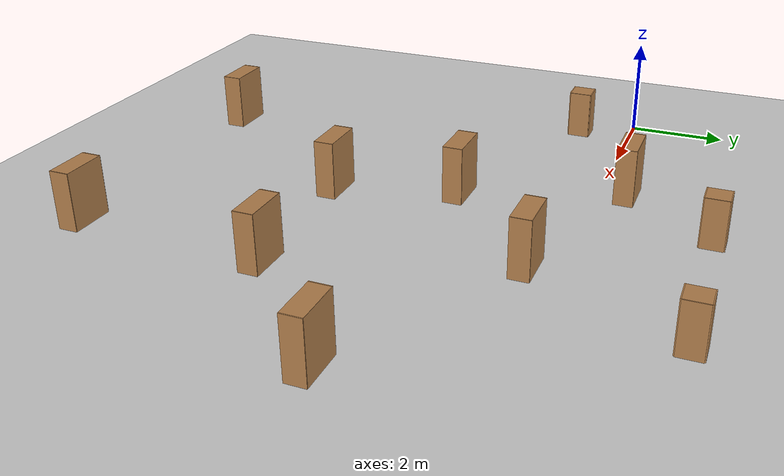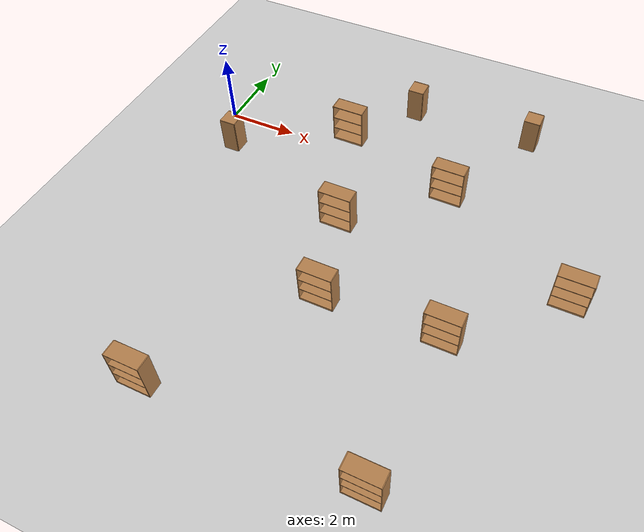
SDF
<sdf version="1.6">
 <world name="default">
  <model name="ground_plane">
   <static>1</static>
   <link name="link">
    <collision name="collision">
     <geometry><plane><normal>0 0 1</normal><size>100 100</size></plane></geometry>
     <surface><friction><ode><mu>100</mu><mu2>50</mu2></ode></friction></surface>
    </collision>
    <visual name="visual">
     <cast_shadows>0</cast_shadows>
     <geometry><plane><normal>0 0 1</normal><size>100 100</size></plane></geometry>
     <material>
      <script><uri>file://media/materials/scripts/gazebo.material</uri><name>Gazebo/Grey</name></script>
     </material>
    </visual>
   </link>
  </model>
  <model name="cabinet_32">
   <static>1</static>
   <link name="cabinet_bottom_plate">
    <inertial>
     <pose>0 0 -1 0 -0 0</pose>
     <inertia><ixx>2.05</ixx><ixy>0</ixy><ixz>0</ixz><iyy>2.05</iyy><iyz>0</iyz><izz>2.05</izz></inertia>
     <mass>25</mass>
    </inertial>
    <collision name="cabinet_bottom_plate_geom">
     <pose>0 0 0.01 0 -0 0</pose>
     <geometry><box><size>0.45 0.45 0.02</size></box></geometry>
    </collision>
    <visual name="cabinet_bottom_plate_geom_visual">
     <pose>0 0 0.01 0 -0 0</pose>
     <geometry><box><size>0.45 0.45 0.02</size></box></geometry>
     <material>
      <script><uri>file://media/materials/scripts/gazebo.material</uri><name>Gazebo/Wood</name></script>
     </material>
    </visual>
    <collision name="cabinet_bottom_plate_geom_cabinet_back_plate">
     <pose>0.235 0 0.51 0 -0 0</pose>
     <geometry><box><size>0.02 0.45 1.02</size></box></geometry>
    </collision>
    <visual name="cabinet_bottom_plate_geom_cabinet_back_plate_visual">
     <pose>0.235 0 0.51 0 -0 0</pose>
     <geometry><box><size>0.02 0.45 1.02</size></box></geometry>
     <material>
      <script><uri>file://media/materials/scripts/gazebo.material</uri><name>Gazebo/Wood</name></script>
     </material>
    </visual>
    <collision name="cabinet_bottom_plate_geom_cabinet_left_plate">
     <pose>0 0.235 0.51 0 -0 0</pose>
     <geometry><box><size>0.45 0.02 1.02</size></box></geometry>
    </collision>
    <visual name="cabinet_bottom_plate_geom_cabinet_left_plate_visual">
     <pose>0 0.235 0.51 0 -0 0</pose>
     <geometry><box><size>0.45 0.02 1.02</size></box></geometry>
     <material>
      <script><uri>file://media/materials/scripts/gazebo.material</uri><name>Gazebo/Wood</name></script>
     </material>
    </visual>
    <collision name="cabinet_bottom_plate_geom_cabinet_middle_plate">
     <pose>0 0 0.51 0 -0 0</pose>
     <geometry><box><size>0.45 0.45 0.02</size></box></geometry>
    </collision>
    <visual name="cabinet_bottom_plate_geom_cabinet_middle_plate_visual">
     <pose>0 0 0.51 0 -0 0</pose>
     <geometry><box><size>0.45 0.45 0.02</size></box></geometry>
     <material>
      <script><uri>file://media/materials/scripts/gazebo.material</uri><name>Gazebo/Wood</name></script>
     </material>
    </visual>
    <collision name="cabinet_bottom_plate_geom_cabinet_right_plate">
     <pose>0 -0.235 0.51 0 -0 0</pose>
     <geometry><box><size>0.45 0.02 1.02</size></box></geometry>
    </collision>
    <visual name="cabinet_bottom_plate_geom_cabinet_right_plate_visual">
     <pose>0 -0.235 0.51 0 -0 0</pose>
     <geometry><box><size>0.45 0.02 1.02</size></box></geometry>
     <material>
      <script><uri>file://media/materials/scripts/gazebo.material</uri><name>Gazebo/Wood</name></script>
     </material>
    </visual>
    <collision name="cabinet_bottom_plate_geom_cabinet_top_plate">
     <pose>0 0 1.01 0 -0 0</pose>
     <geometry><box><size>0.45 0.45 0.02</size></box></geometry>
    </collision>
    <visual name="cabinet_bottom_plate_geom_cabinet_top_plate_visual">
     <pose>0 0 1.01 0 -0 0</pose>
     <geometry><box><size>0.45 0.45 0.02</size></box></geometry>
     <material>
      <script><uri>file://media/materials/scripts/gazebo.material</uri><name>Gazebo/Wood</name></script>
     </material>
    </visual>
   </link>
   <pose>8.56803 2.50006 0 0 -0 0</pose>
  </model>
  <model name="cabinet_34">
   <static>1</static>
   <link name="cabinet_bottom_plate">
    <inertial>
     <pose>0 0 -1 0 -0 0</pose>
     <inertia><ixx>2.05</ixx><ixy>0</ixy><ixz>0</ixz><iyy>2.05</iyy><iyz>0</iyz><izz>2.05</izz></inertia>
     <mass>25</mass>
    </inertial>
    <collision name="cabinet_bottom_plate_geom">
     <pose>0 0 0.01 0 -0 0</pose>
     <geometry><box><size>0.45 0.45 0.02</size></box></geometry>
    </collision>
    <visual name="cabinet_bottom_plate_geom_visual">
     <pose>0 0 0.01 0 -0 0</pose>
     <geometry><box><size>0.45 0.45 0.02</size></box></geometry>
     <material>
      <script><uri>file://media/materials/scripts/gazebo.material</uri><name>Gazebo/Wood</name></script>
     </material>
    </visual>
    <collision name="cabinet_bottom_plate_geom_cabinet_back_plate">
     <pose>0.235 0 0.51 0 -0 0</pose>
     <geometry><box><size>0.02 0.45 1.02</size></box></geometry>
    </collision>
    <visual name="cabinet_bottom_plate_geom_cabinet_back_plate_visual">
     <pose>0.235 0 0.51 0 -0 0</pose>
     <geometry><box><size>0.02 0.45 1.02</size></box></geometry>
     <material>
      <script><uri>file://media/materials/scripts/gazebo.material</uri><name>Gazebo/Wood</name></script>
     </material>
    </visual>
    <collision name="cabinet_bottom_plate_geom_cabinet_left_plate">
     <pose>0 0.235 0.51 0 -0 0</pose>
     <geometry><box><size>0.45 0.02 1.02</size></box></geometry>
    </collision>
    <visual name="cabinet_bottom_plate_geom_cabinet_left_plate_visual">
     <pose>0 0.235 0.51 0 -0 0</pose>
     <geometry><box><size>0.45 0.02 1.02</size></box></geometry>
     <material>
      <script><uri>file://media/materials/scripts/gazebo.material</uri><name>Gazebo/Wood</name></script>
     </material>
    </visual>
    <collision name="cabinet_bottom_plate_geom_cabinet_middle_plate">
     <pose>0 0 0.51 0 -0 0</pose>
     <geometry><box><size>0.45 0.45 0.02</size></box></geometry>
    </collision>
    <visual name="cabinet_bottom_plate_geom_cabinet_middle_plate_visual">
     <pose>0 0 0.51 0 -0 0</pose>
     <geometry><box><size>0.45 0.45 0.02</size></box></geometry>
     <material>
      <script><uri>file://media/materials/scripts/gazebo.material</uri><name>Gazebo/Wood</name></script>
     </material>
    </visual>
    <collision name="cabinet_bottom_plate_geom_cabinet_right_plate">
     <pose>0 -0.235 0.51 0 -0 0</pose>
     <geometry><box><size>0.45 0.02 1.02</size></box></geometry>
    </collision>
    <visual name="cabinet_bottom_plate_geom_cabinet_right_plate_visual">
     <pose>0 -0.235 0.51 0 -0 0</pose>
     <geometry><box><size>0.45 0.02 1.02</size></box></geometry>
     <material>
      <script><uri>file://media/materials/scripts/gazebo.material</uri><name>Gazebo/Wood</name></script>
     </material>
    </visual>
    <collision name="cabinet_bottom_plate_geom_cabinet_top_plate">
     <pose>0 0 1.01 0 -0 0</pose>
     <geometry><box><size>0.45 0.45 0.02</size></box></geometry>
    </collision>
    <visual name="cabinet_bottom_plate_geom_cabinet_top_plate_visual">
     <pose>0 0 1.01 0 -0 0</pose>
     <geometry><box><size>0.45 0.45 0.02</size></box></geometry>
     <material>
      <script><uri>file://media/materials/scripts/gazebo.material</uri><name>Gazebo/Wood</name></script>
     </material>
    </visual>
   </link>
   <pose>5.05608 2.39994 0 0 -0 0</pose>
  </model>
  <model name="bookshelf_0">
   <static>1</static>
   <link name="link">
    <inertial><mass>1</mass></inertial>
    <collision name="back">
     <pose>0 0.005 0.6 0 -0 0</pose>
     <geometry><box><size>0.9 0.01 1.2</size></box></geometry>
    </collision>
    <visual name="visual1">
     <pose>0 0.005 0.6 0 -0 0</pose>
     <geometry><box><size>0.9 0.01 1.2</size></box></geometry>
     <material>
      <script><uri>file://media/materials/scripts/gazebo.material</uri><name>Gazebo/Wood</name></script>
     </material>
    </visual>
    <collision name="left_side">
     <pose>0.45 -0.195 0.6 0 -0 0</pose>
     <geometry><box><size>0.02 0.4 1.2</size></box></geometry>
    </collision>
    <visual name="visual2">
     <pose>0.45 -0.195 0.6 0 -0 0</pose>
     <geometry><box><size>0.02 0.4 1.2</size></box></geometry>
     <material>
      <script><uri>file://media/materials/scripts/gazebo.material</uri><name>Gazebo/Wood</name></script>
     </material>
    </visual>
    <collision name="right_side">
     <pose>-0.45 -0.195 0.6 0 -0 0</pose>
     <geometry><box><size>0.02 0.4 1.2</size></box></geometry>
    </collision>
    <visual name="visual3">
     <pose>-0.45 -0.195 0.6 0 -0 0</pose>
     <geometry><box><size>0.02 0.4 1.2</size></box></geometry>
     <material>
      <script><uri>file://media/materials/scripts/gazebo.material</uri><name>Gazebo/Wood</name></script>
     </material>
    </visual>
    <collision name="bottom">
     <pose>0 -0.195 0.03 0 -0 0</pose>
     <geometry><box><size>0.88 0.4 0.06</size></box></geometry>
    </collision>
    <visual name="visual4">
     <pose>0 -0.195 0.03 0 -0 0</pose>
     <geometry><box><size>0.88 0.4 0.06</size></box></geometry>
     <material>
      <script><uri>file://media/materials/scripts/gazebo.material</uri><name>Gazebo/Wood</name></script>
     </material>
    </visual>
    <collision name="top">
     <pose>0 -0.195 1.19 0 -0 0</pose>
     <geometry><box><size>0.88 0.4 0.02</size></box></geometry>
    </collision>
    <visual name="visual5">
     <pose>0 -0.195 1.19 0 -0 0</pose>
     <geometry><box><size>0.88 0.4 0.02</size></box></geometry>
     <material>
      <script><uri>file://media/materials/scripts/gazebo.material</uri><name>Gazebo/Wood</name></script>
     </material>
    </visual>
    <collision name="low_shelf">
     <pose>0 -0.195 0.43 0 -0 0</pose>
     <geometry><box><size>0.88 0.4 0.02</size></box></geometry>
    </collision>
    <visual name="visual6">
     <pose>0 -0.195 0.43 0 -0 0</pose>
     <geometry><box><size>0.88 0.4 0.02</size></box></geometry>
     <material>
      <script><uri>file://media/materials/scripts/gazebo.material</uri><name>Gazebo/Wood</name></script>
     </material>
    </visual>
    <collision name="high_shelf">
     <pose>0 -0.195 0.8 0 -0 0</pose>
     <geometry><box><size>0.88 0.4 0.02</size></box></geometry>
    </collision>
    <visual name="visual7">
     <pose>0 -0.195 0.8 0 -0 0</pose>
     <geometry><box><size>0.88 0.4 0.02</size></box></geometry>
     <material>
      <script><uri>file://media/materials/scripts/gazebo.material</uri><name>Gazebo/Wood</name></script>
     </material>
    </visual>
   </link>
   <pose>11.0738 -2.47812 0 0 -0 0</pose>
  </model>
  <model name="bookshelf_1">
   <static>1</static>
   <link name="link">
    <inertial><mass>1</mass></inertial>
    <collision name="back">
     <pose>0 0.005 0.6 0 -0 0</pose>
     <geometry><box><size>0.9 0.01 1.2</size></box></geometry>
    </collision>
    <visual name="visual1">
     <pose>0 0.005 0.6 0 -0 0</pose>
     <geometry><box><size>0.9 0.01 1.2</size></box></geometry>
     <material>
      <script><uri>file://media/materials/scripts/gazebo.material</uri><name>Gazebo/Wood</name></script>
     </material>
    </visual>
    <collision name="left_side">
     <pose>0.45 -0.195 0.6 0 -0 0</pose>
     <geometry><box><size>0.02 0.4 1.2</size></box></geometry>
    </collision>
    <visual name="visual2">
     <pose>0.45 -0.195 0.6 0 -0 0</pose>
     <geometry><box><size>0.02 0.4 1.2</size></box></geometry>
     <material>
      <script><uri>file://media/materials/scripts/gazebo.material</uri><name>Gazebo/Wood</name></script>
     </material>
    </visual>
    <collision name="right_side">
     <pose>-0.45 -0.195 0.6 0 -0 0</pose>
     <geometry><box><size>0.02 0.4 1.2</size></box></geometry>
    </collision>
    <visual name="visual3">
     <pose>-0.45 -0.195 0.6 0 -0 0</pose>
     <geometry><box><size>0.02 0.4 1.2</size></box></geometry>
     <material>
      <script><uri>file://media/materials/scripts/gazebo.material</uri><name>Gazebo/Wood</name></script>
     </material>
    </visual>
    <collision name="bottom">
     <pose>0 -0.195 0.03 0 -0 0</pose>
     <geometry><box><size>0.88 0.4 0.06</size></box></geometry>
    </collision>
    <visual name="visual4">
     <pose>0 -0.195 0.03 0 -0 0</pose>
     <geometry><box><size>0.88 0.4 0.06</size></box></geometry>
     <material>
      <script><uri>file://media/materials/scripts/gazebo.material</uri><name>Gazebo/Wood</name></script>
     </material>
    </visual>
    <collision name="top">
     <pose>0 -0.195 1.19 0 -0 0</pose>
     <geometry><box><size>0.88 0.4 0.02</size></box></geometry>
    </collision>
    <visual name="visual5">
     <pose>0 -0.195 1.19 0 -0 0</pose>
     <geometry><box><size>0.88 0.4 0.02</size></box></geometry>
     <material>
      <script><uri>file://media/materials/scripts/gazebo.material</uri><name>Gazebo/Wood</name></script>
     </material>
    </visual>
    <collision name="low_shelf">
     <pose>0 -0.195 0.43 0 -0 0</pose>
     <geometry><box><size>0.88 0.4 0.02</size></box></geometry>
    </collision>
    <visual name="visual6">
     <pose>0 -0.195 0.43 0 -0 0</pose>
     <geometry><box><size>0.88 0.4 0.02</size></box></geometry>
     <material>
      <script><uri>file://media/materials/scripts/gazebo.material</uri><name>Gazebo/Wood</name></script>
     </material>
    </visual>
    <collision name="high_shelf">
     <pose>0 -0.195 0.8 0 -0 0</pose>
     <geometry><box><size>0.88 0.4 0.02</size></box></geometry>
    </collision>
    <visual name="visual7">
     <pose>0 -0.195 0.8 0 -0 0</pose>
     <geometry><box><size>0.88 0.4 0.02</size></box></geometry>
     <material>
      <script><uri>file://media/materials/scripts/gazebo.material</uri><name>Gazebo/Wood</name></script>
     </material>
    </visual>
   </link>
   <pose>7.13863 -0.340121 0 0 -0 0</pose>
  </model>
  <model name="bookshelf_2">
   <static>1</static>
   <link name="link">
    <inertial><mass>1</mass></inertial>
    <collision name="back">
     <pose>0 0.005 0.6 0 -0 0</pose>
     <geometry><box><size>0.9 0.01 1.2</size></box></geometry>
    </collision>
    <visual name="visual1">
     <pose>0 0.005 0.6 0 -0 0</pose>
     <geometry><box><size>0.9 0.01 1.2</size></box></geometry>
     <material>
      <script><uri>file://media/materials/scripts/gazebo.material</uri><name>Gazebo/Wood</name></script>
     </material>
    </visual>
    <collision name="left_side">
     <pose>0.45 -0.195 0.6 0 -0 0</pose>
     <geometry><box><size>0.02 0.4 1.2</size></box></geometry>
    </collision>
    <visual name="visual2">
     <pose>0.45 -0.195 0.6 0 -0 0</pose>
     <geometry><box><size>0.02 0.4 1.2</size></box></geometry>
     <material>
      <script><uri>file://media/materials/scripts/gazebo.material</uri><name>Gazebo/Wood</name></script>
     </material>
    </visual>
    <collision name="right_side">
     <pose>-0.45 -0.195 0.6 0 -0 0</pose>
     <geometry><box><size>0.02 0.4 1.2</size></box></geometry>
    </collision>
    <visual name="visual3">
     <pose>-0.45 -0.195 0.6 0 -0 0</pose>
     <geometry><box><size>0.02 0.4 1.2</size></box></geometry>
     <material>
      <script><uri>file://media/materials/scripts/gazebo.material</uri><name>Gazebo/Wood</name></script>
     </material>
    </visual>
    <collision name="bottom">
     <pose>0 -0.195 0.03 0 -0 0</pose>
     <geometry><box><size>0.88 0.4 0.06</size></box></geometry>
    </collision>
    <visual name="visual4">
     <pose>0 -0.195 0.03 0 -0 0</pose>
     <geometry><box><size>0.88 0.4 0.06</size></box></geometry>
     <material>
      <script><uri>file://media/materials/scripts/gazebo.material</uri><name>Gazebo/Wood</name></script>
     </material>
    </visual>
    <collision name="top">
     <pose>0 -0.195 1.19 0 -0 0</pose>
     <geometry><box><size>0.88 0.4 0.02</size></box></geometry>
    </collision>
    <visual name="visual5">
     <pose>0 -0.195 1.19 0 -0 0</pose>
     <geometry><box><size>0.88 0.4 0.02</size></box></geometry>
     <material>
      <script><uri>file://media/materials/scripts/gazebo.material</uri><name>Gazebo/Wood</name></script>
     </material>
    </visual>
    <collision name="low_shelf">
     <pose>0 -0.195 0.43 0 -0 0</pose>
     <geometry><box><size>0.88 0.4 0.02</size></box></geometry>
    </collision>
    <visual name="visual6">
     <pose>0 -0.195 0.43 0 -0 0</pose>
     <geometry><box><size>0.88 0.4 0.02</size></box></geometry>
     <material>
      <script><uri>file://media/materials/scripts/gazebo.material</uri><name>Gazebo/Wood</name></script>
     </material>
    </visual>
    <collision name="high_shelf">
     <pose>0 -0.195 0.8 0 -0 0</pose>
     <geometry><box><size>0.88 0.4 0.02</size></box></geometry>
    </collision>
    <visual name="visual7">
     <pose>0 -0.195 0.8 0 -0 0</pose>
     <geometry><box><size>0.88 0.4 0.02</size></box></geometry>
     <material>
      <script><uri>file://media/materials/scripts/gazebo.material</uri><name>Gazebo/Wood</name></script>
     </material>
    </visual>
   </link>
   <pose>8.65724 -4.74656 0 0 -0 0</pose>
  </model>
  <model name="bookshelf_3">
   <static>1</static>
   <link name="link">
    <inertial><mass>1</mass></inertial>
    <collision name="back">
     <pose>0 0.005 0.6 0 -0 0</pose>
     <geometry><box><size>0.9 0.01 1.2</size></box></geometry>
    </collision>
    <visual name="visual1">
     <pose>0 0.005 0.6 0 -0 0</pose>
     <geometry><box><size>0.9 0.01 1.2</size></box></geometry>
     <material>
      <script><uri>file://media/materials/scripts/gazebo.material</uri><name>Gazebo/Wood</name></script>
     </material>
    </visual>
    <collision name="left_side">
     <pose>0.45 -0.195 0.6 0 -0 0</pose>
     <geometry><box><size>0.02 0.4 1.2</size></box></geometry>
    </collision>
    <visual name="visual2">
     <pose>0.45 -0.195 0.6 0 -0 0</pose>
     <geometry><box><size>0.02 0.4 1.2</size></box></geometry>
     <material>
      <script><uri>file://media/materials/scripts/gazebo.material</uri><name>Gazebo/Wood</name></script>
     </material>
    </visual>
    <collision name="right_side">
     <pose>-0.45 -0.195 0.6 0 -0 0</pose>
     <geometry><box><size>0.02 0.4 1.2</size></box></geometry>
    </collision>
    <visual name="visual3">
     <pose>-0.45 -0.195 0.6 0 -0 0</pose>
     <geometry><box><size>0.02 0.4 1.2</size></box></geometry>
     <material>
      <script><uri>file://media/materials/scripts/gazebo.material</uri><name>Gazebo/Wood</name></script>
     </material>
    </visual>
    <collision name="bottom">
     <pose>0 -0.195 0.03 0 -0 0</pose>
     <geometry><box><size>0.88 0.4 0.06</size></box></geometry>
    </collision>
    <visual name="visual4">
     <pose>0 -0.195 0.03 0 -0 0</pose>
     <geometry><box><size>0.88 0.4 0.06</size></box></geometry>
     <material>
      <script><uri>file://media/materials/scripts/gazebo.material</uri><name>Gazebo/Wood</name></script>
     </material>
    </visual>
    <collision name="top">
     <pose>0 -0.195 1.19 0 -0 0</pose>
     <geometry><box><size>0.88 0.4 0.02</size></box></geometry>
    </collision>
    <visual name="visual5">
     <pose>0 -0.195 1.19 0 -0 0</pose>
     <geometry><box><size>0.88 0.4 0.02</size></box></geometry>
     <material>
      <script><uri>file://media/materials/scripts/gazebo.material</uri><name>Gazebo/Wood</name></script>
     </material>
    </visual>
    <collision name="low_shelf">
     <pose>0 -0.195 0.43 0 -0 0</pose>
     <geometry><box><size>0.88 0.4 0.02</size></box></geometry>
    </collision>
    <visual name="visual6">
     <pose>0 -0.195 0.43 0 -0 0</pose>
     <geometry><box><size>0.88 0.4 0.02</size></box></geometry>
     <material>
      <script><uri>file://media/materials/scripts/gazebo.material</uri><name>Gazebo/Wood</name></script>
     </material>
    </visual>
    <collision name="high_shelf">
     <pose>0 -0.195 0.8 0 -0 0</pose>
     <geometry><box><size>0.88 0.4 0.02</size></box></geometry>
    </collision>
    <visual name="visual7">
     <pose>0 -0.195 0.8 0 -0 0</pose>
     <geometry><box><size>0.88 0.4 0.02</size></box></geometry>
     <material>
      <script><uri>file://media/materials/scripts/gazebo.material</uri><name>Gazebo/Wood</name></script>
     </material>
    </visual>
   </link>
   <pose>4.8209 -2.41505 0 0 -0 0</pose>
  </model>
  <model name="bookshelf_4">
   <static>1</static>
   <link name="link">
    <inertial><mass>1</mass></inertial>
    <collision name="back">
     <pose>0 0.005 0.6 0 -0 0</pose>
     <geometry><box><size>0.9 0.01 1.2</size></box></geometry>
    </collision>
    <visual name="visual1">
     <pose>0 0.005 0.6 0 -0 0</pose>
     <geometry><box><size>0.9 0.01 1.2</size></box></geometry>
     <material>
      <script><uri>file://media/materials/scripts/gazebo.material</uri><name>Gazebo/Wood</name></script>
     </material>
    </visual>
    <collision name="left_side">
     <pose>0.45 -0.195 0.6 0 -0 0</pose>
     <geometry><box><size>0.02 0.4 1.2</size></box></geometry>
    </collision>
    <visual name="visual2">
     <pose>0.45 -0.195 0.6 0 -0 0</pose>
     <geometry><box><size>0.02 0.4 1.2</size></box></geometry>
     <material>
      <script><uri>file://media/materials/scripts/gazebo.material</uri><name>Gazebo/Wood</name></script>
     </material>
    </visual>
    <collision name="right_side">
     <pose>-0.45 -0.195 0.6 0 -0 0</pose>
     <geometry><box><size>0.02 0.4 1.2</size></box></geometry>
    </collision>
    <visual name="visual3">
     <pose>-0.45 -0.195 0.6 0 -0 0</pose>
     <geometry><box><size>0.02 0.4 1.2</size></box></geometry>
     <material>
      <script><uri>file://media/materials/scripts/gazebo.material</uri><name>Gazebo/Wood</name></script>
     </material>
    </visual>
    <collision name="bottom">
     <pose>0 -0.195 0.03 0 -0 0</pose>
     <geometry><box><size>0.88 0.4 0.06</size></box></geometry>
    </collision>
    <visual name="visual4">
     <pose>0 -0.195 0.03 0 -0 0</pose>
     <geometry><box><size>0.88 0.4 0.06</size></box></geometry>
     <material>
      <script><uri>file://media/materials/scripts/gazebo.material</uri><name>Gazebo/Wood</name></script>
     </material>
    </visual>
    <collision name="top">
     <pose>0 -0.195 1.19 0 -0 0</pose>
     <geometry><box><size>0.88 0.4 0.02</size></box></geometry>
    </collision>
    <visual name="visual5">
     <pose>0 -0.195 1.19 0 -0 0</pose>
     <geometry><box><size>0.88 0.4 0.02</size></box></geometry>
     <material>
      <script><uri>file://media/materials/scripts/gazebo.material</uri><name>Gazebo/Wood</name></script>
     </material>
    </visual>
    <collision name="low_shelf">
     <pose>0 -0.195 0.43 0 -0 0</pose>
     <geometry><box><size>0.88 0.4 0.02</size></box></geometry>
    </collision>
    <visual name="visual6">
     <pose>0 -0.195 0.43 0 -0 0</pose>
     <geometry><box><size>0.88 0.4 0.02</size></box></geometry>
     <material>
      <script><uri>file://media/materials/scripts/gazebo.material</uri><name>Gazebo/Wood</name></script>
     </material>
    </visual>
    <collision name="high_shelf">
     <pose>0 -0.195 0.8 0 -0 0</pose>
     <geometry><box><size>0.88 0.4 0.02</size></box></geometry>
    </collision>
    <visual name="visual7">
     <pose>0 -0.195 0.8 0 -0 0</pose>
     <geometry><box><size>0.88 0.4 0.02</size></box></geometry>
     <material>
      <script><uri>file://media/materials/scripts/gazebo.material</uri><name>Gazebo/Wood</name></script>
     </material>
    </visual>
   </link>
   <pose>8.51481 -8.72384 0 0 -0 0</pose>
  </model>
  <model name="bookshelf_5">
   <static>1</static>
   <link name="link">
    <inertial><mass>1</mass></inertial>
    <collision name="back">
     <pose>0 0.005 0.6 0 -0 0</pose>
     <geometry><box><size>0.9 0.01 1.2</size></box></geometry>
    </collision>
    <visual name="visual1">
     <pose>0 0.005 0.6 0 -0 0</pose>
     <geometry><box><size>0.9 0.01 1.2</size></box></geometry>
     <material>
      <script><uri>file://media/materials/scripts/gazebo.material</uri><name>Gazebo/Wood</name></script>
     </material>
    </visual>
    <collision name="left_side">
     <pose>0.45 -0.195 0.6 0 -0 0</pose>
     <geometry><box><size>0.02 0.4 1.2</size></box></geometry>
    </collision>
    <visual name="visual2">
     <pose>0.45 -0.195 0.6 0 -0 0</pose>
     <geometry><box><size>0.02 0.4 1.2</size></box></geometry>
     <material>
      <script><uri>file://media/materials/scripts/gazebo.material</uri><name>Gazebo/Wood</name></script>
     </material>
    </visual>
    <collision name="right_side">
     <pose>-0.45 -0.195 0.6 0 -0 0</pose>
     <geometry><box><size>0.02 0.4 1.2</size></box></geometry>
    </collision>
    <visual name="visual3">
     <pose>-0.45 -0.195 0.6 0 -0 0</pose>
     <geometry><box><size>0.02 0.4 1.2</size></box></geometry>
     <material>
      <script><uri>file://media/materials/scripts/gazebo.material</uri><name>Gazebo/Wood</name></script>
     </material>
    </visual>
    <collision name="bottom">
     <pose>0 -0.195 0.03 0 -0 0</pose>
     <geometry><box><size>0.88 0.4 0.06</size></box></geometry>
    </collision>
    <visual name="visual4">
     <pose>0 -0.195 0.03 0 -0 0</pose>
     <geometry><box><size>0.88 0.4 0.06</size></box></geometry>
     <material>
      <script><uri>file://media/materials/scripts/gazebo.material</uri><name>Gazebo/Wood</name></script>
     </material>
    </visual>
    <collision name="top">
     <pose>0 -0.195 1.19 0 -0 0</pose>
     <geometry><box><size>0.88 0.4 0.02</size></box></geometry>
    </collision>
    <visual name="visual5">
     <pose>0 -0.195 1.19 0 -0 0</pose>
     <geometry><box><size>0.88 0.4 0.02</size></box></geometry>
     <material>
      <script><uri>file://media/materials/scripts/gazebo.material</uri><name>Gazebo/Wood</name></script>
     </material>
    </visual>
    <collision name="low_shelf">
     <pose>0 -0.195 0.43 0 -0 0</pose>
     <geometry><box><size>0.88 0.4 0.02</size></box></geometry>
    </collision>
    <visual name="visual6">
     <pose>0 -0.195 0.43 0 -0 0</pose>
     <geometry><box><size>0.88 0.4 0.02</size></box></geometry>
     <material>
      <script><uri>file://media/materials/scripts/gazebo.material</uri><name>Gazebo/Wood</name></script>
     </material>
    </visual>
    <collision name="high_shelf">
     <pose>0 -0.195 0.8 0 -0 0</pose>
     <geometry><box><size>0.88 0.4 0.02</size></box></geometry>
    </collision>
    <visual name="visual7">
     <pose>0 -0.195 0.8 0 -0 0</pose>
     <geometry><box><size>0.88 0.4 0.02</size></box></geometry>
     <material>
      <script><uri>file://media/materials/scripts/gazebo.material</uri><name>Gazebo/Wood</name></script>
     </material>
    </visual>
   </link>
   <pose>5.50862 -4.86001 0 0 -0 0</pose>
  </model>
  <model name="bookshelf_6">
   <static>1</static>
   <link name="link">
    <inertial><mass>1</mass></inertial>
    <collision name="back">
     <pose>0 0.005 0.6 0 -0 0</pose>
     <geometry><box><size>0.9 0.01 1.2</size></box></geometry>
    </collision>
    <visual name="visual1">
     <pose>0 0.005 0.6 0 -0 0</pose>
     <geometry><box><size>0.9 0.01 1.2</size></box></geometry>
     <material>
      <script><uri>file://media/materials/scripts/gazebo.material</uri><name>Gazebo/Wood</name></script>
     </material>
    </visual>
    <collision name="left_side">
     <pose>0.45 -0.195 0.6 0 -0 0</pose>
     <geometry><box><size>0.02 0.4 1.2</size></box></geometry>
    </collision>
    <visual name="visual2">
     <pose>0.45 -0.195 0.6 0 -0 0</pose>
     <geometry><box><size>0.02 0.4 1.2</size></box></geometry>
     <material>
      <script><uri>file://media/materials/scripts/gazebo.material</uri><name>Gazebo/Wood</name></script>
     </material>
    </visual>
    <collision name="right_side">
     <pose>-0.45 -0.195 0.6 0 -0 0</pose>
     <geometry><box><size>0.02 0.4 1.2</size></box></geometry>
    </collision>
    <visual name="visual3">
     <pose>-0.45 -0.195 0.6 0 -0 0</pose>
     <geometry><box><size>0.02 0.4 1.2</size></box></geometry>
     <material>
      <script><uri>file://media/materials/scripts/gazebo.material</uri><name>Gazebo/Wood</name></script>
     </material>
    </visual>
    <collision name="bottom">
     <pose>0 -0.195 0.03 0 -0 0</pose>
     <geometry><box><size>0.88 0.4 0.06</size></box></geometry>
    </collision>
    <visual name="visual4">
     <pose>0 -0.195 0.03 0 -0 0</pose>
     <geometry><box><size>0.88 0.4 0.06</size></box></geometry>
     <material>
      <script><uri>file://media/materials/scripts/gazebo.material</uri><name>Gazebo/Wood</name></script>
     </material>
    </visual>
    <collision name="top">
     <pose>0 -0.195 1.19 0 -0 0</pose>
     <geometry><box><size>0.88 0.4 0.02</size></box></geometry>
    </collision>
    <visual name="visual5">
     <pose>0 -0.195 1.19 0 -0 0</pose>
     <geometry><box><size>0.88 0.4 0.02</size></box></geometry>
     <material>
      <script><uri>file://media/materials/scripts/gazebo.material</uri><name>Gazebo/Wood</name></script>
     </material>
    </visual>
    <collision name="low_shelf">
     <pose>0 -0.195 0.43 0 -0 0</pose>
     <geometry><box><size>0.88 0.4 0.02</size></box></geometry>
    </collision>
    <visual name="visual6">
     <pose>0 -0.195 0.43 0 -0 0</pose>
     <geometry><box><size>0.88 0.4 0.02</size></box></geometry>
     <material>
      <script><uri>file://media/materials/scripts/gazebo.material</uri><name>Gazebo/Wood</name></script>
     </material>
    </visual>
    <collision name="high_shelf">
     <pose>0 -0.195 0.8 0 -0 0</pose>
     <geometry><box><size>0.88 0.4 0.02</size></box></geometry>
    </collision>
    <visual name="visual7">
     <pose>0 -0.195 0.8 0 -0 0</pose>
     <geometry><box><size>0.88 0.4 0.02</size></box></geometry>
     <material>
      <script><uri>file://media/materials/scripts/gazebo.material</uri><name>Gazebo/Wood</name></script>
     </material>
    </visual>
   </link>
   <pose>3.68303 0.752195 0 0 -0 0</pose>
  </model>
  <model name="cabinet_42">
   <static>1</static>
   <link name="cabinet_bottom_plate">
    <inertial>
     <pose>0 0 -1 0 -0 0</pose>
     <inertia><ixx>2.05</ixx><ixy>0</ixy><ixz>0</ixz><iyy>2.05</iyy><iyz>0</iyz><izz>2.05</izz></inertia>
     <mass>25</mass>
    </inertial>
    <collision name="cabinet_bottom_plate_geom">
     <pose>0 0 0.01 0 -0 0</pose>
     <geometry><box><size>0.45 0.45 0.02</size></box></geometry>
    </collision>
    <visual name="cabinet_bottom_plate_geom_visual">
     <pose>0 0 0.01 0 -0 0</pose>
     <geometry><box><size>0.45 0.45 0.02</size></box></geometry>
     <material>
      <script><uri>file://media/materials/scripts/gazebo.material</uri><name>Gazebo/Wood</name></script>
     </material>
    </visual>
    <collision name="cabinet_bottom_plate_geom_cabinet_back_plate">
     <pose>0.235 0 0.51 0 -0 0</pose>
     <geometry><box><size>0.02 0.45 1.02</size></box></geometry>
    </collision>
    <visual name="cabinet_bottom_plate_geom_cabinet_back_plate_visual">
     <pose>0.235 0 0.51 0 -0 0</pose>
     <geometry><box><size>0.02 0.45 1.02</size></box></geometry>
     <material>
      <script><uri>file://media/materials/scripts/gazebo.material</uri><name>Gazebo/Wood</name></script>
     </material>
    </visual>
    <collision name="cabinet_bottom_plate_geom_cabinet_left_plate">
     <pose>0 0.235 0.51 0 -0 0</pose>
     <geometry><box><size>0.45 0.02 1.02</size></box></geometry>
    </collision>
    <visual name="cabinet_bottom_plate_geom_cabinet_left_plate_visual">
     <pose>0 0.235 0.51 0 -0 0</pose>
     <geometry><box><size>0.45 0.02 1.02</size></box></geometry>
     <material>
      <script><uri>file://media/materials/scripts/gazebo.material</uri><name>Gazebo/Wood</name></script>
     </material>
    </visual>
    <collision name="cabinet_bottom_plate_geom_cabinet_middle_plate">
     <pose>0 0 0.51 0 -0 0</pose>
     <geometry><box><size>0.45 0.45 0.02</size></box></geometry>
    </collision>
    <visual name="cabinet_bottom_plate_geom_cabinet_middle_plate_visual">
     <pose>0 0 0.51 0 -0 0</pose>
     <geometry><box><size>0.45 0.45 0.02</size></box></geometry>
     <material>
      <script><uri>file://media/materials/scripts/gazebo.material</uri><name>Gazebo/Wood</name></script>
     </material>
    </visual>
    <collision name="cabinet_bottom_plate_geom_cabinet_right_plate">
     <pose>0 -0.235 0.51 0 -0 0</pose>
     <geometry><box><size>0.45 0.02 1.02</size></box></geometry>
    </collision>
    <visual name="cabinet_bottom_plate_geom_cabinet_right_plate_visual">
     <pose>0 -0.235 0.51 0 -0 0</pose>
     <geometry><box><size>0.45 0.02 1.02</size></box></geometry>
     <material>
      <script><uri>file://media/materials/scripts/gazebo.material</uri><name>Gazebo/Wood</name></script>
     </material>
    </visual>
    <collision name="cabinet_bottom_plate_geom_cabinet_top_plate">
     <pose>0 0 1.01 0 -0 0</pose>
     <geometry><box><size>0.45 0.45 0.02</size></box></geometry>
    </collision>
    <visual name="cabinet_bottom_plate_geom_cabinet_top_plate_visual">
     <pose>0 0 1.01 0 -0 0</pose>
     <geometry><box><size>0.45 0.45 0.02</size></box></geometry>
     <material>
      <script><uri>file://media/materials/scripts/gazebo.material</uri><name>Gazebo/Wood</name></script>
     </material>
    </visual>
   </link>
   <pose>0.705963 -1.11297 0 0 -0 0</pose>
  </model>
  <model name="bookshelf_7">
   <static>1</static>
   <link name="link">
    <inertial><mass>1</mass></inertial>
    <collision name="back">
     <pose>0 0.005 0.6 0 -0 0</pose>
     <geometry><box><size>0.9 0.01 1.2</size></box></geometry>
    </collision>
    <visual name="visual1">
     <pose>0 0.005 0.6 0 -0 0</pose>
     <geometry><box><size>0.9 0.01 1.2</size></box></geometry>
     <material>
      <script><uri>file://media/materials/scripts/gazebo.material</uri><name>Gazebo/Wood</name></script>
     </material>
    </visual>
    <collision name="left_side">
     <pose>0.45 -0.195 0.6 0 -0 0</pose>
     <geometry><box><size>0.02 0.4 1.2</size></box></geometry>
    </collision>
    <visual name="visual2">
     <pose>0.45 -0.195 0.6 0 -0 0</pose>
     <geometry><box><size>0.02 0.4 1.2</size></box></geometry>
     <material>
      <script><uri>file://media/materials/scripts/gazebo.material</uri><name>Gazebo/Wood</name></script>
     </material>
    </visual>
    <collision name="right_side">
     <pose>-0.45 -0.195 0.6 0 -0 0</pose>
     <geometry><box><size>0.02 0.4 1.2</size></box></geometry>
    </collision>
    <visual name="visual3">
     <pose>-0.45 -0.195 0.6 0 -0 0</pose>
     <geometry><box><size>0.02 0.4 1.2</size></box></geometry>
     <material>
      <script><uri>file://media/materials/scripts/gazebo.material</uri><name>Gazebo/Wood</name></script>
     </material>
    </visual>
    <collision name="bottom">
     <pose>0 -0.195 0.03 0 -0 0</pose>
     <geometry><box><size>0.88 0.4 0.06</size></box></geometry>
    </collision>
    <visual name="visual4">
     <pose>0 -0.195 0.03 0 -0 0</pose>
     <geometry><box><size>0.88 0.4 0.06</size></box></geometry>
     <material>
      <script><uri>file://media/materials/scripts/gazebo.material</uri><name>Gazebo/Wood</name></script>
     </material>
    </visual>
    <collision name="top">
     <pose>0 -0.195 1.19 0 -0 0</pose>
     <geometry><box><size>0.88 0.4 0.02</size></box></geometry>
    </collision>
    <visual name="visual5">
     <pose>0 -0.195 1.19 0 -0 0</pose>
     <geometry><box><size>0.88 0.4 0.02</size></box></geometry>
     <material>
      <script><uri>file://media/materials/scripts/gazebo.material</uri><name>Gazebo/Wood</name></script>
     </material>
    </visual>
    <collision name="low_shelf">
     <pose>0 -0.195 0.43 0 -0 0</pose>
     <geometry><box><size>0.88 0.4 0.02</size></box></geometry>
    </collision>
    <visual name="visual6">
     <pose>0 -0.195 0.43 0 -0 0</pose>
     <geometry><box><size>0.88 0.4 0.02</size></box></geometry>
     <material>
      <script><uri>file://media/materials/scripts/gazebo.material</uri><name>Gazebo/Wood</name></script>
     </material>
    </visual>
    <collision name="high_shelf">
     <pose>0 -0.195 0.8 0 -0 0</pose>
     <geometry><box><size>0.88 0.4 0.02</size></box></geometry>
    </collision>
    <visual name="visual7">
     <pose>0 -0.195 0.8 0 -0 0</pose>
     <geometry><box><size>0.88 0.4 0.02</size></box></geometry>
     <material>
      <script><uri>file://media/materials/scripts/gazebo.material</uri><name>Gazebo/Wood</name></script>
     </material>
    </visual>
   </link>
   <pose>2.8692 -8.60365 0 0 -0 0</pose>
  </model>
 </world>
</sdf>
